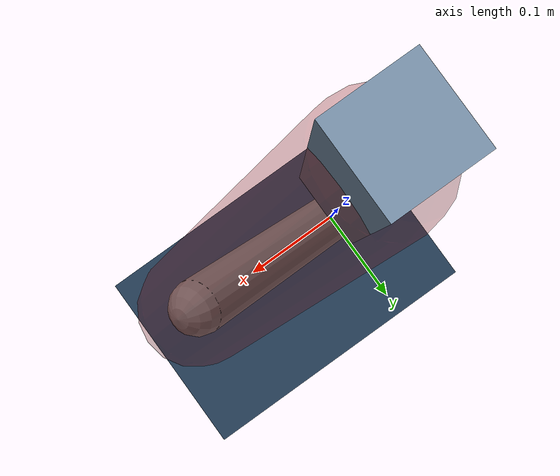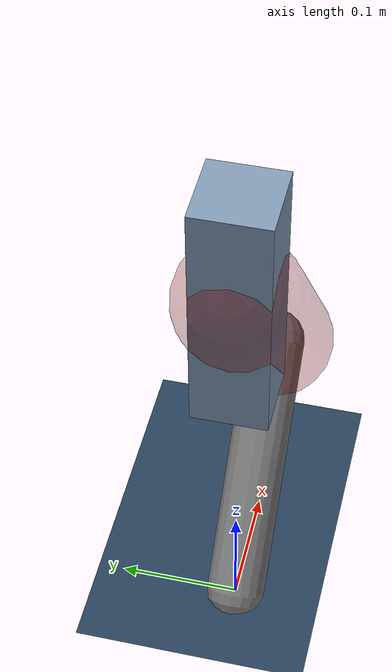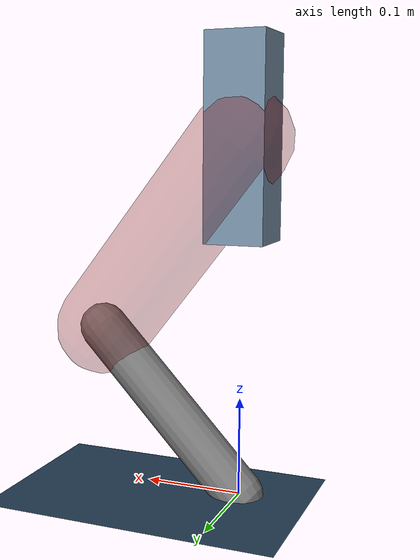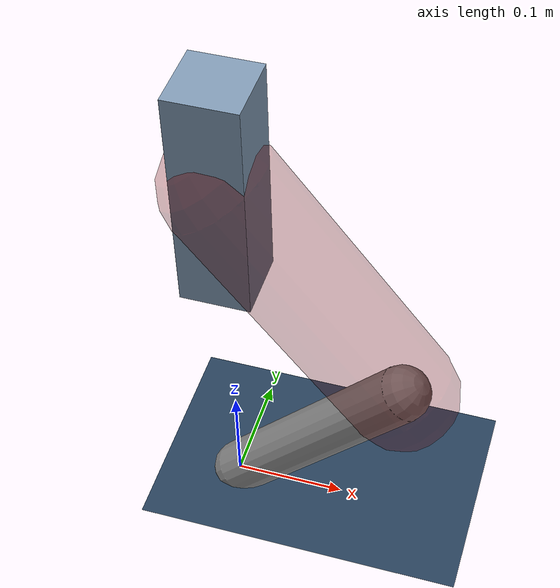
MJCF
<mujoco model="Hopper2D">
	<compiler inertiafromgeom="true" angle="radian" />
	<option timestep="0.001" integrator="implicit" cone="elliptic" solver="Newton" tolerance="1e-10" />

	<default>
		<geom contype="1" conaffinity="1" condim="3" friction="2 0.005 0.0001" solref="0.005 1" />
		<joint limited="true" damping="0.1" />
	</default>

	<asset>
		<texture name="skybox" type="skybox" builtin="gradient" rgb1=".4 .6 .8" rgb2="0 0 0" width="800" height="800" />
		<texture name="grid" type="2d" builtin="checker" rgb1=".1 .2 .3" rgb2=".2 .3 .4" width="300" height="300" mark="edge" markrgb=".2 .3 .4" />
		<material name="ground" texture="grid" texrepeat="1 1" texuniform="true" reflectance="0.1" />
		<material name="leg" rgba="0.5 0.6 0.7 1" />
	</asset>

	<worldbody>

		<geom name="floor" type="plane" size="5 5 0.25" material="ground" />

		<light directional="false" diffuse="0.8 0.8 0.8" specular="0.3 0.3 0.3" pos="0 0 2" dir="0 0 -1" />
		<light mode="targetbodycom" target="base" directional="false" diffuse="0.8 0.8 0.8" specular="0.3 0.3 0.3" pos="0 0 2" dir="0 0 -1" />

		<camera name="fixed" pos="0 -2 1" xyaxes="1 0 0 0 0 1" />
		<camera name="tracking" mode="trackcom" pos="0 -3 1" />

		<body name="root" pos="0 0 0.3586871682887701">
			<joint name="slide_x" type="slide" axis="1 0 0" range="-100 100" />
			<joint name="slide_z" type="slide" axis="0 0 1" range="0 10" />

			<body name="base" pos="0 0 0">
				<geom name="torso" type="box" size="0.03 0.03 0.1" mass="2.4909999999999997" material="leg" />

				<body name="link1" pos="0 0 0" euler="0 0.9095374002928981 0">
					<joint type="hinge" axis="0 -1 0" pos="0 0 0" name="hinge1" limited="true" range="-3.14 3.14" stiffness="0" damping="0.1" />
					<geom name="thigh" type="capsule" fromto="0 0 0 0.24838675567305146 0 0" size="0.05" rgba="0.5 0 0 0.3" mass="0.8522055647499338" />

					<body name="link2" pos="0.24838675567305146 0 0" euler="0 1.4145657487122127 0">
						<joint type="hinge" axis="0 -1 0" pos="0 0 0" name="hinge2" limited="true" range="-3.14 3.14" stiffness="0" damping="0.1" />
						<geom name="shank" type="capsule" fromto="0 0 0 0.22298953542549943 0 0" size="0.025" mass="0.4201905818829495" />

					</body>
				</body>
			</body>
		</body>
	</worldbody>

	<actuator>
		<motor name="torque1" joint="hinge1" ctrlrange="-90.67086460381613 90.67086460381613" ctrllimited="true" gear="1" />
		<motor name="torque2" joint="hinge2" ctrlrange="-41.49537958379285 41.49537958379285" ctrllimited="true" gear="1" />
	</actuator>
</mujoco>
